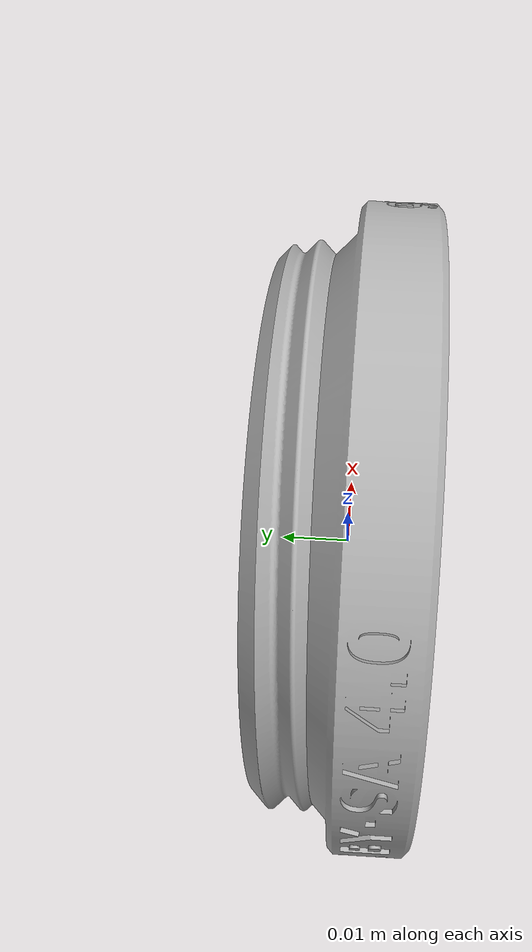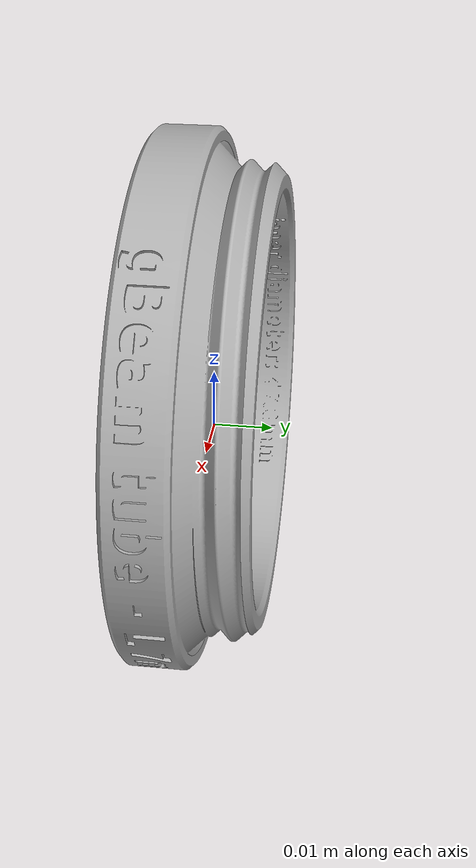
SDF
<?xml version='1.0'?>
<sdf version='1.6'>
  <model name='tape2'>
    <link name='link'>
      <pose frame=''>0 0 0.004999 0 -0 0</pose>
      <inertial>
        <mass>0.0125</mass>
        <inertia>
          <ixx>7.6e-07</ixx>
          <ixy>0</ixy>
          <ixz>0</ixz>
          <iyy>1.052e-05</iyy>
          <iyz>0</iyz>
          <izz>1.107e-05</izz>
        </inertia>
        <pose frame=''>0 0 0 0 -0 0</pose>
      </inertial>
      <self_collide>0</self_collide>
      <kinematic>0</kinematic>
      <gravity>1</gravity>
      <visual name='visual'>
        <geometry>
          <mesh>
		  <uri>/home/adiganapathi/FETCH_CORE/toolbox/tape2.dae</uri>
            <scale>0.0015 0.0015 0.0015</scale>
          </mesh>
        </geometry>
        <pose frame=''>0 0 0 0 -0 0</pose>
        <transparency>0</transparency>
        <cast_shadows>1</cast_shadows>
      </visual>
      <collision name='collision'>
        <laser_retro>0</laser_retro>
        <max_contacts>10</max_contacts>
        <pose frame=''>0 0 0 1.57 -0 0</pose>
        <geometry>
          <cylinder>
            <radius>0.0457491</radius>
            <length>0.021</length>
          </cylinder>
        </geometry>
        <surface>
          <friction>
            <ode>
              <mu>1</mu>
              <mu2>1</mu2>
              <fdir1>0 0 0</fdir1>
              <slip1>0</slip1>
              <slip2>0</slip2>
            </ode>
            <torsional>
              <coefficient>1</coefficient>
              <patch_radius>0</patch_radius>
              <surface_radius>0.05</surface_radius>
              <use_patch_radius>0</use_patch_radius>
              <ode>
                <slip>0</slip>
              </ode>
            </torsional>
          </friction>
          <bounce>
            <restitution_coefficient>0</restitution_coefficient>
            <threshold>1e+06</threshold>
          </bounce>
          <contact>
            <collide_without_contact>0</collide_without_contact>
            <collide_without_contact_bitmask>1</collide_without_contact_bitmask>
            <collide_bitmask>1</collide_bitmask>
            <ode>
              <soft_cfm>0</soft_cfm>
              <soft_erp>0.2</soft_erp>
              <kp>100000</kp>
              <kd>1</kd>
              <max_vel>1</max_vel>
              <min_depth>0.001</min_depth>
            </ode>
            <bullet>
              <split_impulse>1</split_impulse>
              <split_impulse_penetration_threshold>-0.01</split_impulse_penetration_threshold>
              <soft_cfm>0</soft_cfm>
              <soft_erp>0.2</soft_erp>
              <kp>100000</kp>
              <kd>1</kd>
            </bullet>
          </contact>
        </surface>
      </collision>
    </link>
    <static>0</static>
    <allow_auto_disable>1</allow_auto_disable>
  </model>
</sdf>
